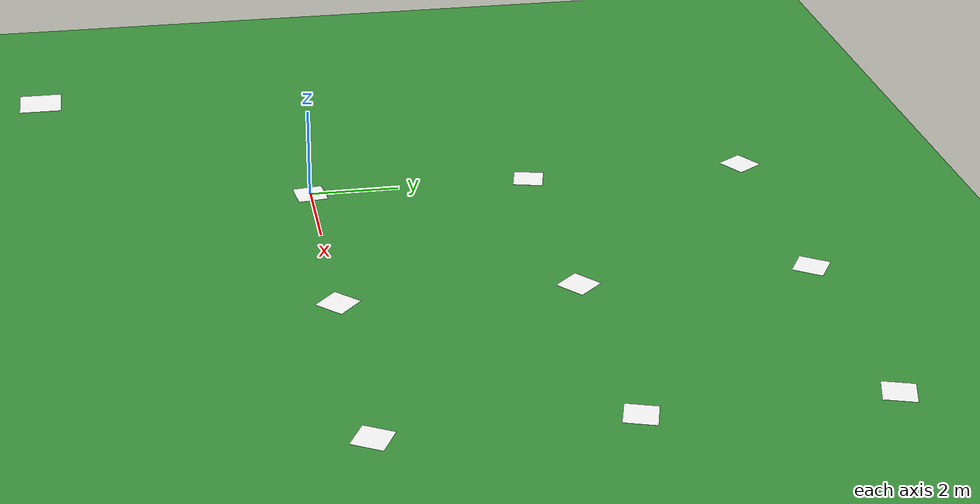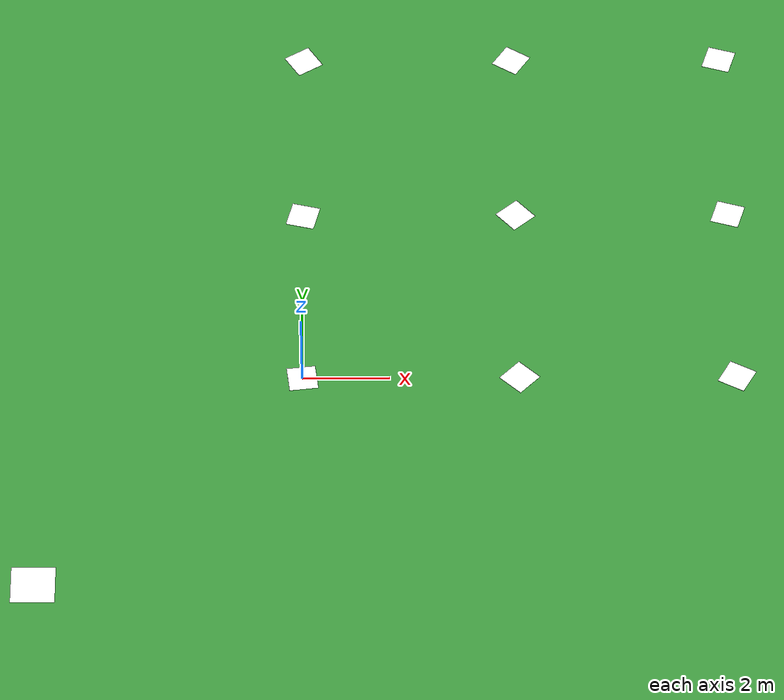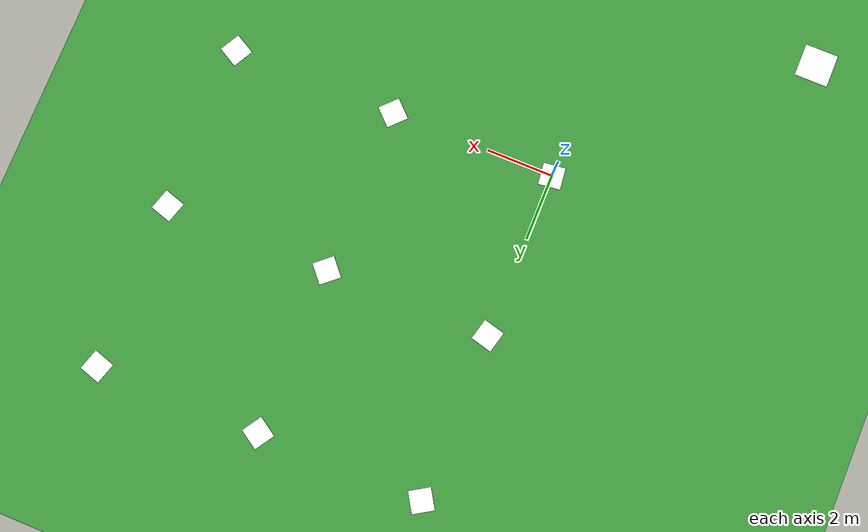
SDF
<?xml version="1.0" encoding="UTF-8"?>
<sdf version="1.9">
  <world name="default">
    <physics type="ode">
      <max_step_size>0.004</max_step_size>
      <real_time_factor>1.0</real_time_factor>
      <real_time_update_rate>250</real_time_update_rate>
    </physics>
    <plugin name="gz::sim::systems::Physics" filename="gz-sim-physics-system"/>
    <plugin name="gz::sim::systems::UserCommands" filename="gz-sim-user-commands-system"/>
    <plugin name="gz::sim::systems::SceneBroadcaster" filename="gz-sim-scene-broadcaster-system"/>
    <plugin name="gz::sim::systems::Contact" filename="gz-sim-contact-system"/>
    <plugin name="gz::sim::systems::Imu" filename="gz-sim-imu-system"/>
    <plugin name="gz::sim::systems::AirPressure" filename="gz-sim-air-pressure-system"/>
    <plugin name="gz::sim::systems::ApplyLinkWrench" filename="gz-sim-apply-link-wrench-system"/>
    <plugin name="gz::sim::systems::NavSat" filename="gz-sim-navsat-system"/>
    <plugin name="gz::sim::systems::Sensors" filename="gz-sim-sensors-system">
      <render_engine>ogre2</render_engine>
    </plugin>
    <gui fullscreen="false">
      <!-- 3D scene -->
      <plugin filename="MinimalScene" name="3D View">
        <gz-gui>
          <title>3D View</title>
          <property type="bool" key="showTitleBar">false</property>
          <property type="string" key="state">docked</property>
        </gz-gui>
        <engine>ogre2</engine>
        <scene>scene</scene>
        <ambient_light>0.4 0.4 0.4</ambient_light>
        <background_color>0.8 0.8 0.8</background_color>
        <camera_pose>-6 0 6 0 0.5 0</camera_pose>
        <camera_clip>
          <near>0.25</near>
          <far>25000</far>
        </camera_clip>
      </plugin>
      <!-- Plugins that add functionality to the scene -->
      <plugin filename="EntityContextMenuPlugin" name="Entity context menu">
        <gz-gui>
          <property key="state" type="string">floating</property>
          <property key="width" type="double">5</property>
          <property key="height" type="double">5</property>
          <property key="showTitleBar" type="bool">false</property>
        </gz-gui>
      </plugin>
      <plugin filename="GzSceneManager" name="Scene Manager">
        <gz-gui>
          <property key="resizable" type="bool">false</property>
          <property key="width" type="double">5</property>
          <property key="height" type="double">5</property>
          <property key="state" type="string">floating</property>
          <property key="showTitleBar" type="bool">false</property>
        </gz-gui>
      </plugin>
      <plugin filename="InteractiveViewControl" name="Interactive view control">
        <gz-gui>
          <property key="resizable" type="bool">false</property>
          <property key="width" type="double">5</property>
          <property key="height" type="double">5</property>
          <property key="state" type="string">floating</property>
          <property key="showTitleBar" type="bool">false</property>
        </gz-gui>
      </plugin>
      <plugin filename="CameraTracking" name="Camera Tracking">
        <gz-gui>
          <property key="resizable" type="bool">false</property>
          <property key="width" type="double">5</property>
          <property key="height" type="double">5</property>
          <property key="state" type="string">floating</property>
          <property key="showTitleBar" type="bool">false</property>
        </gz-gui>
      </plugin>
      <plugin filename="MarkerManager" name="Marker manager">
        <gz-gui>
          <property key="resizable" type="bool">false</property>
          <property key="width" type="double">5</property>
          <property key="height" type="double">5</property>
          <property key="state" type="string">floating</property>
          <property key="showTitleBar" type="bool">false</property>
        </gz-gui>
      </plugin>
      <plugin filename="SelectEntities" name="Select Entities">
        <gz-gui>
          <anchors target="Select entities">
            <line own="right" target="right"/>
            <line own="top" target="top"/>
          </anchors>
          <property key="resizable" type="bool">false</property>
          <property key="width" type="double">5</property>
          <property key="height" type="double">5</property>
          <property key="state" type="string">floating</property>
          <property key="showTitleBar" type="bool">false</property>
        </gz-gui>
      </plugin>
      <plugin filename="VisualizationCapabilities" name="Visualization Capabilities">
        <gz-gui>
          <property key="resizable" type="bool">false</property>
          <property key="width" type="double">5</property>
          <property key="height" type="double">5</property>
          <property key="state" type="string">floating</property>
          <property key="showTitleBar" type="bool">false</property>
        </gz-gui>
      </plugin>
      <plugin filename="Spawn" name="Spawn Entities">
        <gz-gui>
          <anchors target="Select entities">
            <line own="right" target="right"/>
            <line own="top" target="top"/>
          </anchors>
          <property key="resizable" type="bool">false</property>
          <property key="width" type="double">5</property>
          <property key="height" type="double">5</property>
          <property key="state" type="string">floating</property>
          <property key="showTitleBar" type="bool">false</property>
        </gz-gui>
      </plugin>
      <plugin name="World control" filename="WorldControl">
        <gz-gui>
          <title>World control</title>
          <property type="bool" key="showTitleBar">0</property>
          <property type="bool" key="resizable">0</property>
          <property type="double" key="height">72</property>
          <property type="double" key="width">121</property>
          <property type="double" key="z">1</property>
          <property type="string" key="state">floating</property>
          <anchors target="3D View">
            <line own="left" target="left"/>
            <line own="bottom" target="bottom"/>
          </anchors>
        </gz-gui>
        <play_pause>1</play_pause>
        <step>1</step>
        <start_paused>1</start_paused>
      </plugin>
      <plugin name="World stats" filename="WorldStats">
        <gz-gui>
          <title>World stats</title>
          <property type="bool" key="showTitleBar">0</property>
          <property type="bool" key="resizable">0</property>
          <property type="double" key="height">110</property>
          <property type="double" key="width">290</property>
          <property type="double" key="z">1</property>
          <property type="string" key="state">floating</property>
          <anchors target="3D View">
            <line own="right" target="right"/>
            <line own="bottom" target="bottom"/>
          </anchors>
        </gz-gui>
        <sim_time>1</sim_time>
        <real_time>1</real_time>
        <real_time_factor>1</real_time_factor>
        <iterations>1</iterations>
      </plugin>
      <plugin name="Entity tree" filename="EntityTree"/>
    </gui>
    <gravity>0 0 -9.8</gravity>
    <magnetic_field>6e-06 2.3e-05 -4.2e-05</magnetic_field>
    <atmosphere type="adiabatic"/>
    <scene>
      <grid>false</grid>
      <ambient>0.4 0.4 0.4 1</ambient>
      <background>0.7 0.7 0.7 1</background>
      <shadows>true</shadows>
    </scene>
    <model name="ground_plane">
      <static>true</static>
      <link name="link">
        <collision name="collision">
          <geometry>
            <plane>
              <normal>0 0 1</normal>
              <size>1 1</size>
            </plane>
          </geometry>
          <surface>
            <friction>
              <ode/>
            </friction>
            <bounce/>
            <contact/>
          </surface>
        </collision>
        <visual name="visual">
          <geometry>
            <plane>
              <normal>0 0 1</normal>
              <size>50 50</size>
            </plane>
          </geometry>
          <material>
            <ambient>0.118 0.275 0.118 1</ambient>
            <diffuse>0.235 0.588 0.235 1</diffuse>
            <specular>0.078 0.157 0.078 1</specular>
            <pbr>
              <metal>
                <albedo_map>file:///home/carbon/ros2_ws/src/carbodrone/carbodrone_dualtech/assets/map.jpg</albedo_map>
              </metal>
            </pbr>
          </material>
        </visual>
        <pose>0 0 0 0 -0 0</pose>
        <inertial>
          <pose>0 0 0 0 -0 0</pose>
          <mass>1</mass>
          <inertia>
            <ixx>1</ixx>
            <ixy>0</ixy>
            <ixz>0</ixz>
            <iyy>1</iyy>
            <iyz>0</iyz>
            <izz>1</izz>
          </inertia>
        </inertial>
        <enable_wind>false</enable_wind>
      </link>
      <pose>0 0 0 0 -0 0</pose>
      <self_collide>false</self_collide>
    </model>
    <light name="sunUTC" type="directional">
      <pose>0 0 500 0 -0 0</pose>
      <cast_shadows>true</cast_shadows>
      <intensity>1</intensity>
      <direction>0.001 0.625 -0.78</direction>
      <diffuse>0.904 0.904 0.904 1</diffuse>
      <specular>0.271 0.271 0.271 1</specular>
      <attenuation>
        <range>2000</range>
        <linear>0</linear>
        <constant>1</constant>
        <quadratic>0</quadratic>
      </attenuation>
      <spot>
        <inner_angle>0</inner_angle>
        <outer_angle>0</outer_angle>
        <falloff>0</falloff>
      </spot>
    </light>
    <spherical_coordinates>
      <surface_model>EARTH_WGS84</surface_model>
      <world_frame_orientation>ENU</world_frame_orientation>
      <latitude_deg>47.397971057728974</latitude_deg>
      <longitude_deg> 8.546163739800146</longitude_deg>
      <elevation>0</elevation>
    </spherical_coordinates>

    <model name='field_1'>
      <pose>0 0 0.001 0 0 43241</pose>
      <link name='link'>
        <visual name='visual'>
          <geometry>
            <box>
              <size>0.6667 0.6667 0.001</size>
            </box>
          </geometry>
          <material>
            <ambient>1 1 1 1</ambient>
            <diffuse>1 1 1 1</diffuse>
            <specular>1 1 1 1</specular>
            <pbr>
              <metal>
                <albedo_map>file:///home/carbon/ros2_ws/src/carbodrone/carbodrone_dualtech/assets/qr_a_box.png</albedo_map>
              </metal>
            </pbr>
          </material>
        </visual>
        <pose>0 0 0 0 0 0</pose>
        <enable_wind>false</enable_wind>
      </link>
      <static>true</static>
      <self_collide>false</self_collide>
    </model>

    <model name='field_2'>
      <pose>5 0 0.001 0 0 152134</pose>
      <link name='link'>
        <visual name='visual'>
          <geometry>
            <box>
              <size>0.6667 0.6667 0.001</size>
            </box>
          </geometry>
          <material>
            <ambient>1 1 1 1</ambient>
            <diffuse>1 1 1 1</diffuse>
            <specular>1 1 1 1</specular>
            <pbr>
              <metal>
                <albedo_map>file:///home/carbon/ros2_ws/src/carbodrone/carbodrone_dualtech/assets/qr_b_box.png</albedo_map>
              </metal>
            </pbr>
          </material>
        </visual>
        <pose>0 0 0 0 0 0</pose>
        <enable_wind>false</enable_wind>
      </link>
      <static>true</static>
      <self_collide>false</self_collide>
    </model>

    <model name='field_3'>
      <pose>10 0 0.001 0 0 163433</pose>
      <link name='link'>
        <visual name='visual'>
          <geometry>
            <box>
              <size>0.6667 0.6667 0.001</size>
            </box>
          </geometry>
          <material>
            <ambient>1 1 1 1</ambient>
            <diffuse>1 1 1 1</diffuse>
            <specular>1 1 1 1</specular>
            <pbr>
              <metal>
                <albedo_map>file:///home/carbon/ros2_ws/src/carbodrone/carbodrone_dualtech/assets/qr_c_box.png</albedo_map>
              </metal>
            </pbr>
          </material>
        </visual>
        <pose>0 0 0 0 0 0</pose>
        <enable_wind>false</enable_wind>
      </link>
      <static>true</static>
      <self_collide>false</self_collide>
    </model>

    <model name='field_4'>
      <pose>0 5 0.001 0 0 5476234</pose>
      <link name='link'>
        <visual name='visual'>
          <geometry>
            <box>
              <size>0.6667 0.6667 0.001</size>
            </box>
          </geometry>
          <material>
            <ambient>1 1 1 1</ambient>
            <diffuse>1 1 1 1</diffuse>
            <specular>1 1 1 1</specular>
            <pbr>
              <metal>
                <albedo_map>file:///home/carbon/ros2_ws/src/carbodrone/carbodrone_dualtech/assets/qr_d_box.png</albedo_map>
              </metal>
            </pbr>
          </material>
        </visual>
        <pose>0 0 0 0 0 0</pose>
        <enable_wind>false</enable_wind>
      </link>
      <static>true</static>
      <self_collide>false</self_collide>
    </model>

    <model name='field_5'>
      <pose>5 5 0.001 0 0 87941564</pose>
      <link name='link'>
        <visual name='visual'>
          <geometry>
            <box>
              <size>0.6667 0.6667 0.001</size>
            </box>
          </geometry>
          <material>
            <ambient>1 1 1 1</ambient>
            <diffuse>1 1 1 1</diffuse>
            <specular>1 1 1 1</specular>
            <pbr>
              <metal>
                <albedo_map>file:///home/carbon/ros2_ws/src/carbodrone/carbodrone_dualtech/assets/qr_e_box.png</albedo_map>
              </metal>
            </pbr>
          </material>
        </visual>
        <pose>0 0 0 0 0 0</pose>
        <enable_wind>false</enable_wind>
      </link>
      <static>true</static>
      <self_collide>false</self_collide>
    </model>

    <model name='field_6'>
      <pose>10 5 0.001 0 0 67135453</pose>
      <link name='link'>
        <visual name='visual'>
          <geometry>
            <box>
              <size>0.6667 0.6667 0.001</size>
            </box>
          </geometry>
          <material>
            <ambient>1 1 1 1</ambient>
            <diffuse>1 1 1 1</diffuse>
            <specular>1 1 1 1</specular>
            <pbr>
              <metal>
                <albedo_map>file:///home/carbon/ros2_ws/src/carbodrone/carbodrone_dualtech/assets/qr_f_box.png</albedo_map>
              </metal>
            </pbr>
          </material>
        </visual>
        <pose>0 0 0 0 0 0</pose>
        <enable_wind>false</enable_wind>
      </link>
      <static>true</static>
      <self_collide>false</self_collide>
    </model>

    <model name='field_7'>
      <pose>0 10 0.001 0 0 1377435</pose>
      <link name='link'>
        <visual name='visual'>
          <geometry>
            <box>
              <size>0.6667 0.6667 0.001</size>
            </box>
          </geometry>
          <material>
            <ambient>1 1 1 1</ambient>
            <diffuse>1 1 1 1</diffuse>
            <specular>1 1 1 1</specular>
            <pbr>
              <metal>
                <albedo_map>file:///home/carbon/ros2_ws/src/carbodrone/carbodrone_dualtech/assets/qr_g_box.png</albedo_map>
              </metal>
            </pbr>
          </material>
        </visual>
        <pose>0 0 0 0 0 0</pose>
        <enable_wind>false</enable_wind>
      </link>
      <static>true</static>
      <self_collide>false</self_collide>
    </model>

    <model name='field_8'>
      <pose>5 10 0.001 0 0 16876321</pose>
      <link name='link'>
        <visual name='visual'>
          <geometry>
            <box>
              <size>0.6667 0.6667 0.001</size>
            </box>
          </geometry>
          <material>
            <ambient>1 1 1 1</ambient>
            <diffuse>1 1 1 1</diffuse>
            <specular>1 1 1 1</specular>
            <pbr>
              <metal>
                <albedo_map>file:///home/carbon/ros2_ws/src/carbodrone/carbodrone_dualtech/assets/qr_h_box.png</albedo_map>
              </metal>
            </pbr>
          </material>
        </visual>
        <pose>0 0 0 0 0 0</pose>
        <enable_wind>false</enable_wind>
      </link>
      <static>true</static>
      <self_collide>false</self_collide>
    </model>

    <model name='field_9'>
      <pose>10 10 0.001 0 0 81675314</pose>
      <link name='link'>
        <visual name='visual'>
          <geometry>
            <box>
              <size>0.6667 0.6667 0.001</size>
            </box>
          </geometry>
          <material>
            <ambient>1 1 1 1</ambient>
            <diffuse>1 1 1 1</diffuse>
            <specular>1 1 1 1</specular>
            <pbr>
              <metal>
                <albedo_map>file:///home/carbon/ros2_ws/src/carbodrone/carbodrone_dualtech/assets/qr_i_box.png</albedo_map>
              </metal>
            </pbr>
          </material>
        </visual>
        <pose>0 0 0 0 0 0</pose>
        <enable_wind>false</enable_wind>
      </link>
      <static>true</static>
      <self_collide>false</self_collide>
    </model>

    <model name='landingpad'>
      <pose>-6 -6 0.001 0 0 0</pose>
      <link name='link'>
        <visual name='visual'>
          <geometry>
            <box>
              <size>1 1 0.001</size>
            </box>
          </geometry>
          <material>
            <ambient>1 1 1 1</ambient>
            <diffuse>1 1 1 1</diffuse>
            <specular>1 1 1 1</specular>
            <pbr>
              <metal>
                <albedo_map>file:///home/carbon/ros2_ws/src/carbodrone/carbodrone_dualtech/assets/pad.jpg</albedo_map>
              </metal>
            </pbr>
          </material>
        </visual>
        <pose>0 0 0 0 0 0</pose>
        <enable_wind>false</enable_wind>
      </link>
      <static>true</static>
      <self_collide>false</self_collide>
    </model>
  </world>
</sdf>
